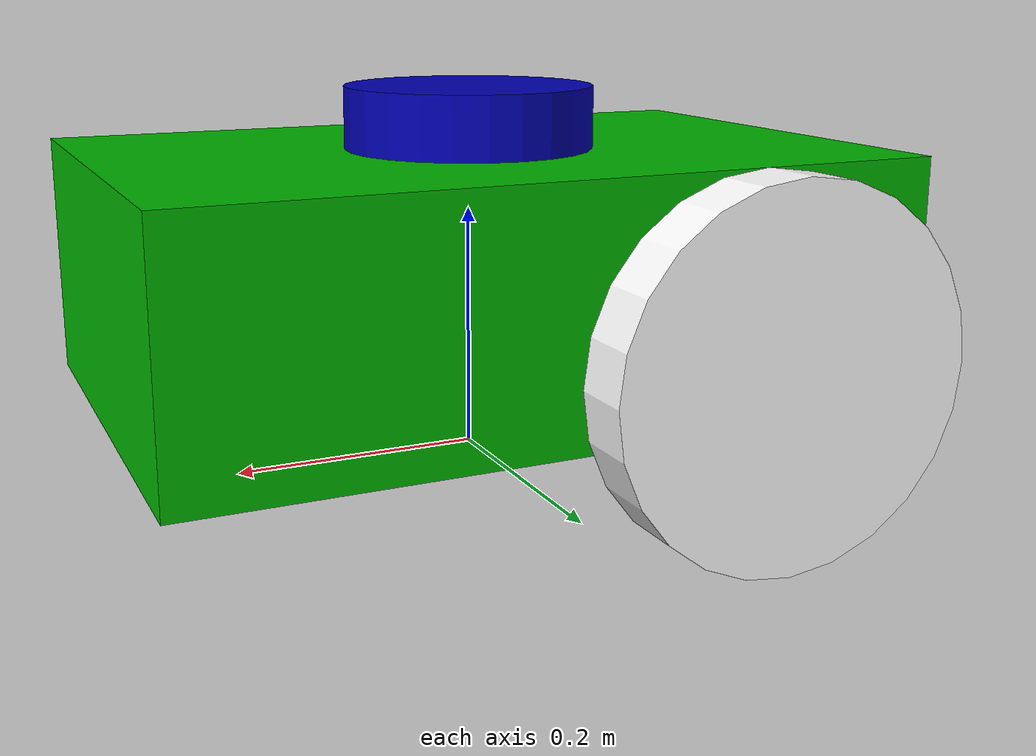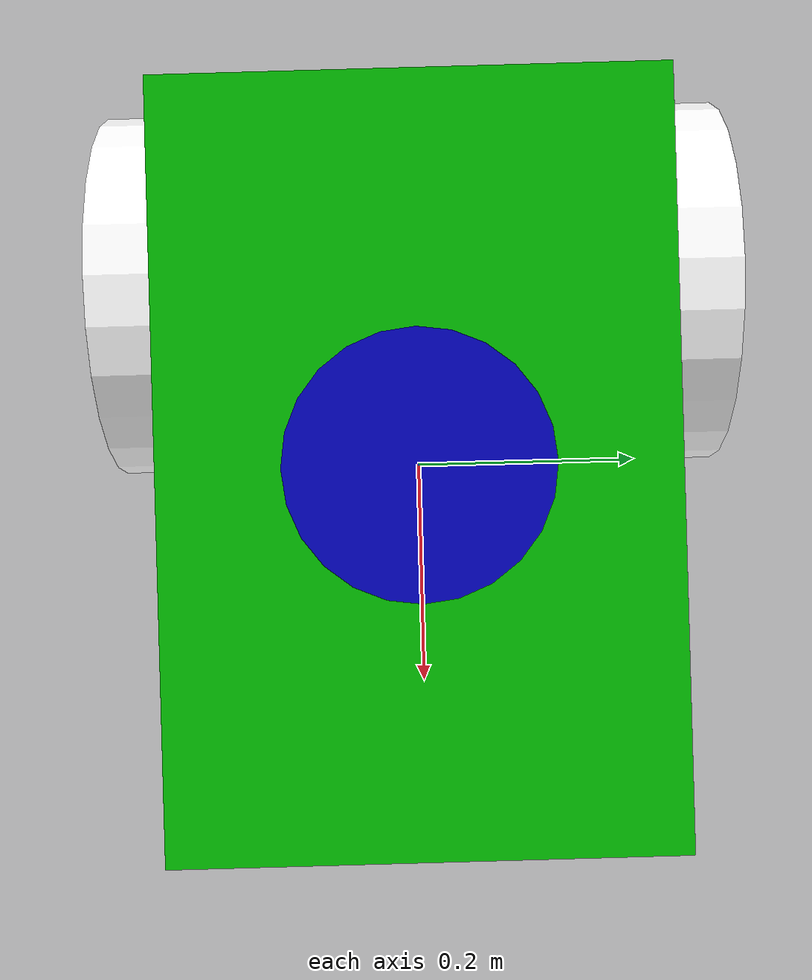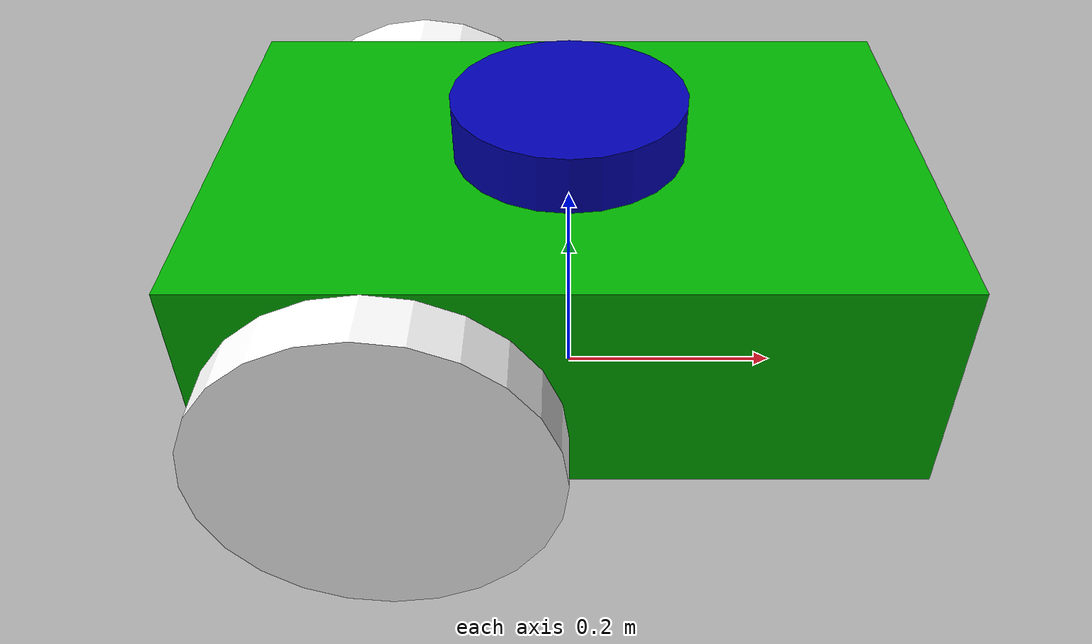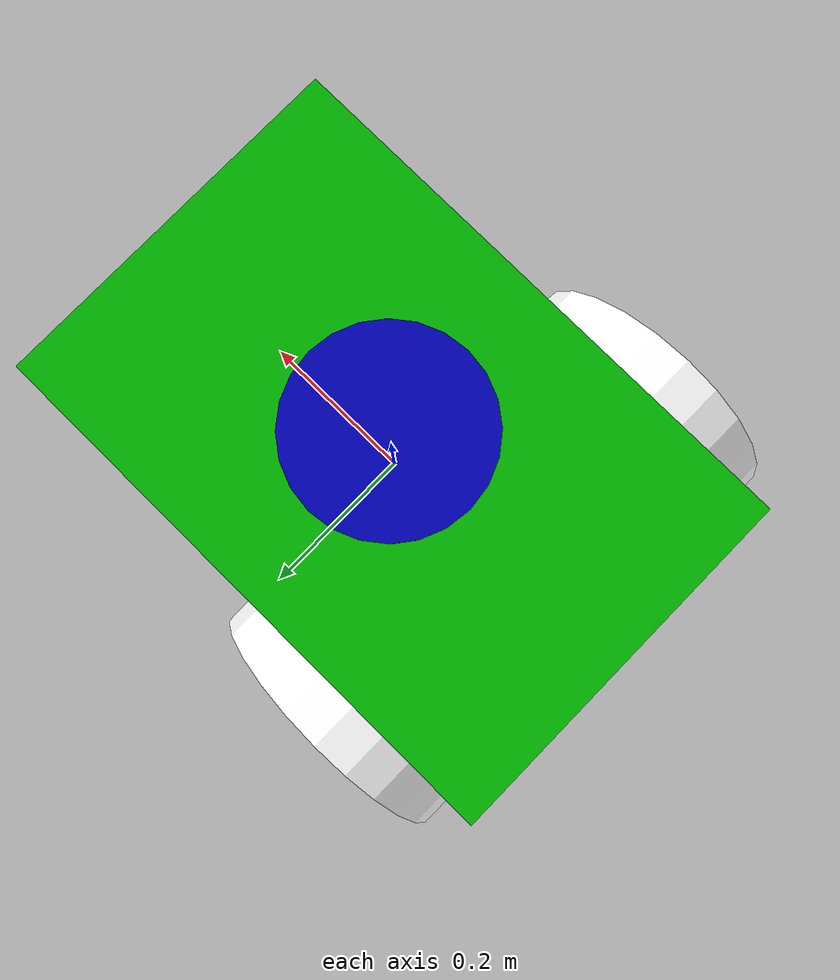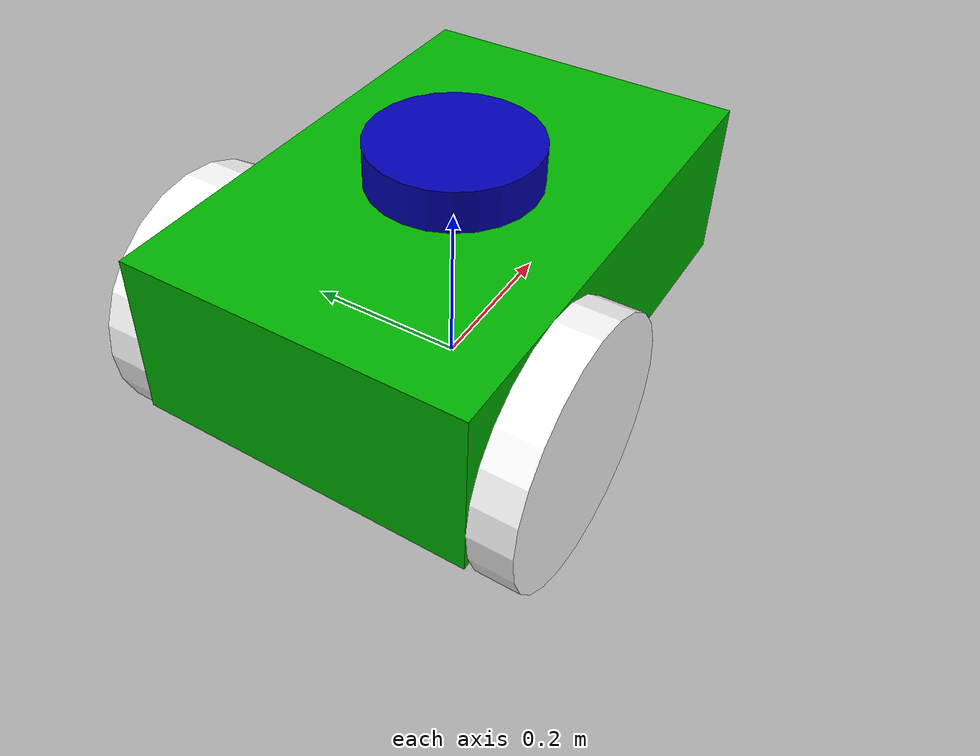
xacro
<?xml version="1.0"?>
<robot xmlns:xacro="http://www.ros.org/wiki/xacro" name="first_robot">

    <xacro:include filename="inertial_macros.xacro"     />

    <material name="grey">
        <color rgba="0.5 0.5 0.5 1" />
    </material>

    <material name="green">
        <color rgba="0 0.7 0 1" />
    </material>

    <material name="blue">
        <color rgba="0 0 0.7 1" />
    </material>

    <material name="white">
        <color rgba="1 1 1 1" />
    </material>

    <link name="base_link">
        <visual>
            <geometry>
                <box size="0.6 0.4 0.2" />
            </geometry>
            <origin xyz="0.0 0.0 0.1" rpy="0.0 0.0 0.0" />
            <material name="green" />
        </visual>
        <collision>
            <geometry>
                <box size="0.6 0.4 0.2" />
            </geometry>
            <origin xyz="0.0 0.0 0.1" rpy="0.0 0.0 0.0" />
        </collision>
        <xacro:inertial_box mass="0.5" x="0.6" y="0.4" z="0.2">
            <origin xyz = "0.0 0.0 0.1" rpy= "0.0 0.0 0.0"/>
        </xacro:inertial_box>
    </link>

    <link name="lidar_link">
        <visual>
            <geometry>
                <cylinder radius="0.1" length="0.05"/>
            </geometry>
            <origin xyz="0 0 0" rpy= "0 0 0" />
            <material name="blue" />
        </visual>
        <collision>
            <geometry>
                <box size="0.2 0.2 0.05"/>
            </geometry>
            <origin xyz="0 0 0" rpy= "0 0 0" />
        </collision>
        <xacro:inertial_box mass="0.1" x="0.2" y="0.2" z="0.05">
            <origin xyz="0 0 0" rpy="0 0 0" />
        </xacro:inertial_box>
    </link>

    <link name="left_wheel_link">
        <visual>
            <geometry>
                <cylinder radius="0.15" length="0.05"/>
            </geometry>
            <origin xyz="0.0 0.0 0.0" rpy="0 0 0" />
            <material name="white" />
        </visual>
        <collision>
            <geometry>
                <cylinder radius="0.15" length="0.05"/>
            </geometry>
            <origin xyz="0.0 0.0 0.0" rpy="0 0 0" />
        </collision>
        <xacro:inertial_cylinder mass="0.1" length="0.05" radius="0.15">
            <origin xyz="0 0 0" rpy="0 0 0"/>
        </xacro:inertial_cylinder>
    </link>

    <link name="right_wheel_link">
        <visual>
            <geometry>
                <cylinder radius="0.15" length="0.05"/>
            </geometry>
            <origin xyz="0 0 0" rpy="0 0 0" />
            <material name="white" />
        </visual>
        <collision>
            <geometry>
                <cylinder radius="0.15" length="0.05"/>
            </geometry>
            <origin xyz="0 0 0" rpy="0 0 0" />
        </collision>
        <xacro:inertial_cylinder mass="0.1" length="0.05" radius="0.15">
            <origin xyz="0 0 0" rpy="0 0 0"/>
        </xacro:inertial_cylinder>
    </link>

    <link name="caster_wheel_link">
        <visual>
            <geometry>
                <sphere radius="0.05"/>
            </geometry>
            <origin xyz="0 0 0" rpy="0 0 0" />
            <material name="white" />
        </visual>
        <collision>
            <geometry>
                <sphere radius="0.05"/>
            </geometry>
            <origin xyz="0 0 0" rpy="0 0 0" />
        </collision>
        <xacro:inertial_sphere mass="0.1" radius="0.05">
            <origin xyz="0 0 0" rpy="0 0 0"/>
        </xacro:inertial_sphere>
    </link>

    <link name="base_footprint" />

    <joint name="base_lidar_joint" type="fixed">
        <parent link="base_link"/>
        <child link="lidar_link"/>
        <origin xyz="0 0 0.225" rpy="0 0 0" />
    </joint>

    <joint name="base_left_wheel_joint" type="continuous">
        <parent link="base_link"/>
        <child link="left_wheel_link"/>
        <origin xyz="-0.15 0.225 0.05" rpy="-1.5708 0 0" />
        <axis xyz="0 0 1"/>
    </joint>

    <joint name="base_right_wheel_joint" type="continuous">
        <parent link="base_link"/>
        <child link="right_wheel_link"/>
        <origin xyz="-0.15 -0.225 0.05" rpy="1.5708 0 0" />
        <axis xyz="0 0 1"/>
    </joint>

    <joint name="base_caster_wheel_joint" type="fixed">
        <parent link = "base_link"/>
        <child link = "caster_wheel_link"/>
        <origin xyz="0.2 0 -0.025" rpy="0 0 0"/>
    </joint>

    <joint name="base_footprint_joint" type="fixed">
        <parent link="base_footprint"/>
        <child link="base_link"/>
        <origin xyz="0 0 0.05" rpy="0 0 0"/>
    </joint>
</robot>
